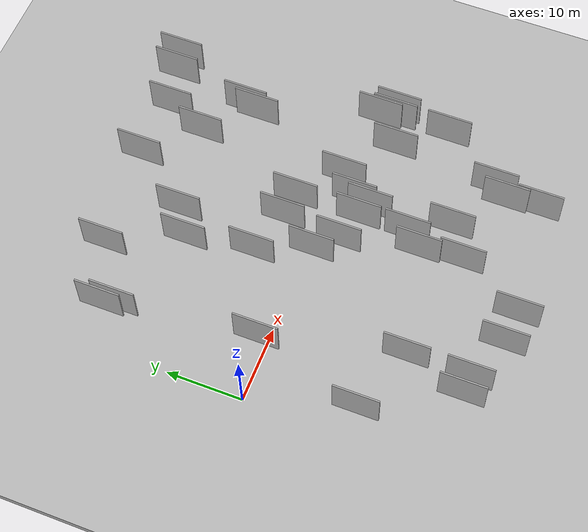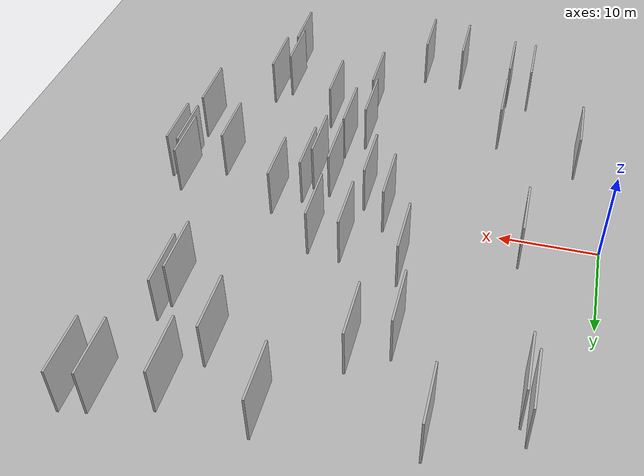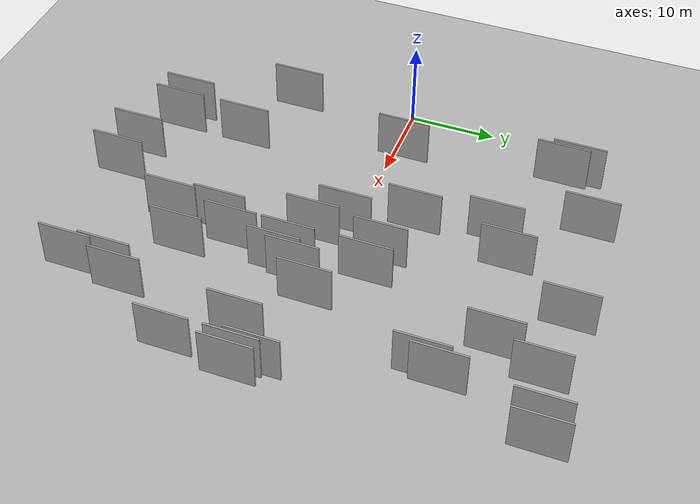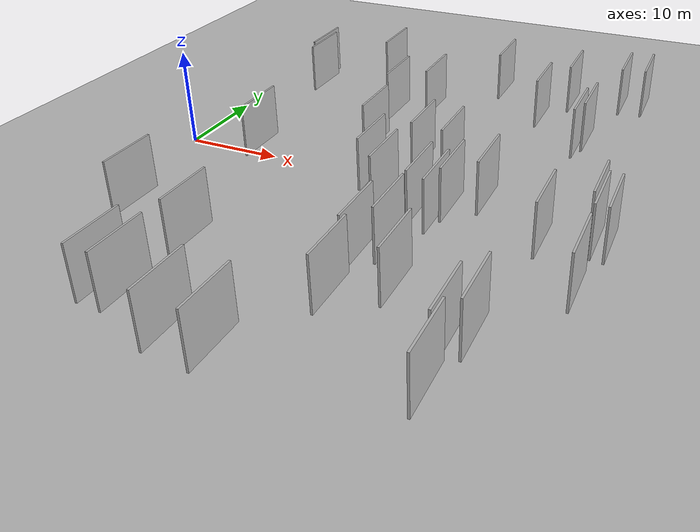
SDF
<?xml version="1.0" encoding="utf-8"?>

<sdf version="1.6">

   <world name="default">

      <gui fullscreen="0">

         <camera name="user_camera">

            <pose>-15 0 4.57585 0 0 0</pose>

            <view_controller>orbit</view_controller>

         </camera>

      </gui>

      <scene>

         <sky>

           <clouds>

             <speed>12</speed>

           </clouds>

         </sky>

         <ambient>0.4 0.4 0.4 1</ambient>

         <background>0.7 0.7 0.7 1</background>

         <shadows>1</shadows>

      </scene>

      <gravity>0 0 -9.8066</gravity>

      <magnetic_field>6e-06 2.3e-05 -4.2e-05</magnetic_field>

      <physics default="0" name="default_physics" type="ode">

         <ode>

            <solver>

               <type>quick</type>

               <iters>10</iters>

               <sor>1.0</sor>

               <use_dynamic_moi_rescaling>0</use_dynamic_moi_rescaling>

            </solver>

            <constraints>

               <cfm>0</cfm>

               <erp>0.2</erp>

               <contact_max_correcting_vel>100</contact_max_correcting_vel>

               <contact_surface_layer>0.001</contact_surface_layer>

            </constraints>

         </ode>

         <max_step_size>0.004</max_step_size>

         <real_time_factor>1</real_time_factor>

         <real_time_update_rate>250</real_time_update_rate>

      </physics>

      <light name="sun" type="directional">

         <cast_shadows>1</cast_shadows>

         <pose>0 0 10 0 0 0</pose>

         <diffuse>0.8 0.8 0.8 1</diffuse>

         <specular>0.2 0.2 0.2 1</specular>

         <attenuation>

            <range>1000</range>

            <constant>0.9</constant>

            <linear>0.01</linear>

            <quadratic>0.001</quadratic>

         </attenuation>

         <direction>-0.5 0.1 -0.9</direction>

      </light>

      <include>

         <name>ground_plane_1</name>

         <uri>model://HANNAS_ground_plane</uri>

         <pose>0 0 0  0 0 0</pose>

      </include>

      <include>

         <name>ground_plane_2</name>

         <uri>model://HANNAS_ground_plane</uri>

         <pose>100 0 0  0 0 0</pose>

      </include>

      <model name="HANNAS_wall_1">

         <static>1</static>

         <pose frame="">5.6228 19.3882 0.0 0.000000 0.000000 1.570796</pose>

         <link name="link">

            <pose frame="">0 0 3.00 0 0 0</pose>

            <collision name="collision">

               <geometry>

                  <box>

                     <size>6.00 0.2 6.00</size>

                  </box>

               </geometry>

               <max_contacts>10</max_contacts>

               <surface>

                  <contact>

                     <ode/>

                  </contact>

                  <bounce/>

                  <friction>

                     <torsional>

                        <ode/>

                     </torsional>

                     <ode/>

                  </friction>

               </surface>

            </collision>

            <visual name="visual">

               <cast_shadows>0</cast_shadows>

               <geometry>

                  <box>

                     <size>6.00 0.2 6.00</size>

                  </box>

               </geometry>

               <material>

                  <script>

                     <uri>model://HANNAS_wall/materials/scripts</uri>

                     <uri>model://HANNAS_wall/materials/textures</uri>

                     <name>vrc/HANNAS_wall</name>

                  </script>

               </material>

            </visual>

            <self_collide>0</self_collide>

            <enable_wind>0</enable_wind>

            <kinematic>0</kinematic>

         </link>

      </model>

      <model name="HANNAS_wall_2">

         <static>1</static>

         <pose frame="">44.4000 -11.1385 0.0 0.000000 0.000000 1.570796</pose>

         <link name="link">

            <pose frame="">0 0 3.00 0 0 0</pose>

            <collision name="collision">

               <geometry>

                  <box>

                     <size>6.00 0.2 6.00</size>

                  </box>

               </geometry>

               <max_contacts>10</max_contacts>

               <surface>

                  <contact>

                     <ode/>

                  </contact>

                  <bounce/>

                  <friction>

                     <torsional>

                        <ode/>

                     </torsional>

                     <ode/>

                  </friction>

               </surface>

            </collision>

            <visual name="visual">

               <cast_shadows>0</cast_shadows>

               <geometry>

                  <box>

                     <size>6.00 0.2 6.00</size>

                  </box>

               </geometry>

               <material>

                  <script>

                     <uri>model://HANNAS_wall/materials/scripts</uri>

                     <uri>model://HANNAS_wall/materials/textures</uri>

                     <name>vrc/HANNAS_wall</name>

                  </script>

               </material>

            </visual>

            <self_collide>0</self_collide>

            <enable_wind>0</enable_wind>

            <kinematic>0</kinematic>

         </link>

      </model>

      <model name="HANNAS_wall_3">

         <static>1</static>

         <pose frame="">13.0281 24.3655 0.0 0.000000 0.000000 1.570796</pose>

         <link name="link">

            <pose frame="">0 0 3.00 0 0 0</pose>

            <collision name="collision">

               <geometry>

                  <box>

                     <size>6.00 0.2 6.00</size>

                  </box>

               </geometry>

               <max_contacts>10</max_contacts>

               <surface>

                  <contact>

                     <ode/>

                  </contact>

                  <bounce/>

                  <friction>

                     <torsional>

                        <ode/>

                     </torsional>

                     <ode/>

                  </friction>

               </surface>

            </collision>

            <visual name="visual">

               <cast_shadows>0</cast_shadows>

               <geometry>

                  <box>

                     <size>6.00 0.2 6.00</size>

                  </box>

               </geometry>

               <material>

                  <script>

                     <uri>model://HANNAS_wall/materials/scripts</uri>

                     <uri>model://HANNAS_wall/materials/textures</uri>

                     <name>vrc/HANNAS_wall</name>

                  </script>

               </material>

            </visual>

            <self_collide>0</self_collide>

            <enable_wind>0</enable_wind>

            <kinematic>0</kinematic>

         </link>

      </model>

      <model name="HANNAS_wall_4">

         <static>1</static>

         <pose frame="">39.2123 15.6683 0.0 0.000000 0.000000 1.570796</pose>

         <link name="link">

            <pose frame="">0 0 3.00 0 0 0</pose>

            <collision name="collision">

               <geometry>

                  <box>

                     <size>6.00 0.2 6.00</size>

                  </box>

               </geometry>

               <max_contacts>10</max_contacts>

               <surface>

                  <contact>

                     <ode/>

                  </contact>

                  <bounce/>

                  <friction>

                     <torsional>

                        <ode/>

                     </torsional>

                     <ode/>

                  </friction>

               </surface>

            </collision>

            <visual name="visual">

               <cast_shadows>0</cast_shadows>

               <geometry>

                  <box>

                     <size>6.00 0.2 6.00</size>

                  </box>

               </geometry>

               <material>

                  <script>

                     <uri>model://HANNAS_wall/materials/scripts</uri>

                     <uri>model://HANNAS_wall/materials/textures</uri>

                     <name>vrc/HANNAS_wall</name>

                  </script>

               </material>

            </visual>

            <self_collide>0</self_collide>

            <enable_wind>0</enable_wind>

            <kinematic>0</kinematic>

         </link>

      </model>

      <model name="HANNAS_wall_5">

         <static>1</static>

         <pose frame="">24.8268 4.6167 0.0 0.000000 0.000000 1.570796</pose>

         <link name="link">

            <pose frame="">0 0 3.00 0 0 0</pose>

            <collision name="collision">

               <geometry>

                  <box>

                     <size>6.00 0.2 6.00</size>

                  </box>

               </geometry>

               <max_contacts>10</max_contacts>

               <surface>

                  <contact>

                     <ode/>

                  </contact>

                  <bounce/>

                  <friction>

                     <torsional>

                        <ode/>

                     </torsional>

                     <ode/>

                  </friction>

               </surface>

            </collision>

            <visual name="visual">

               <cast_shadows>0</cast_shadows>

               <geometry>

                  <box>

                     <size>6.00 0.2 6.00</size>

                  </box>

               </geometry>

               <material>

                  <script>

                     <uri>model://HANNAS_wall/materials/scripts</uri>

                     <uri>model://HANNAS_wall/materials/textures</uri>

                     <name>vrc/HANNAS_wall</name>

                  </script>

               </material>

            </visual>

            <self_collide>0</self_collide>

            <enable_wind>0</enable_wind>

            <kinematic>0</kinematic>

         </link>

      </model>

      <model name="HANNAS_wall_6">

         <static>1</static>

         <pose frame="">28.2179 -4.4504 0.0 0.000000 0.000000 1.570796</pose>

         <link name="link">

            <pose frame="">0 0 3.00 0 0 0</pose>

            <collision name="collision">

               <geometry>

                  <box>

                     <size>6.00 0.2 6.00</size>

                  </box>

               </geometry>

               <max_contacts>10</max_contacts>

               <surface>

                  <contact>

                     <ode/>

                  </contact>

                  <bounce/>

                  <friction>

                     <torsional>

                        <ode/>

                     </torsional>

                     <ode/>

                  </friction>

               </surface>

            </collision>

            <visual name="visual">

               <cast_shadows>0</cast_shadows>

               <geometry>

                  <box>

                     <size>6.00 0.2 6.00</size>

                  </box>

               </geometry>

               <material>

                  <script>

                     <uri>model://HANNAS_wall/materials/scripts</uri>

                     <uri>model://HANNAS_wall/materials/textures</uri>

                     <name>vrc/HANNAS_wall</name>

                  </script>

               </material>

            </visual>

            <self_collide>0</self_collide>

            <enable_wind>0</enable_wind>

            <kinematic>0</kinematic>

         </link>

      </model>

      <model name="HANNAS_wall_7">

         <static>1</static>

         <pose frame="">38.8228 -19.3065 0.0 0.000000 0.000000 1.570796</pose>

         <link name="link">

            <pose frame="">0 0 3.00 0 0 0</pose>

            <collision name="collision">

               <geometry>

                  <box>

                     <size>6.00 0.2 6.00</size>

                  </box>

               </geometry>

               <max_contacts>10</max_contacts>

               <surface>

                  <contact>

                     <ode/>

                  </contact>

                  <bounce/>

                  <friction>

                     <torsional>

                        <ode/>

                     </torsional>

                     <ode/>

                  </friction>

               </surface>

            </collision>

            <visual name="visual">

               <cast_shadows>0</cast_shadows>

               <geometry>

                  <box>

                     <size>6.00 0.2 6.00</size>

                  </box>

               </geometry>

               <material>

                  <script>

                     <uri>model://HANNAS_wall/materials/scripts</uri>

                     <uri>model://HANNAS_wall/materials/textures</uri>

                     <name>vrc/HANNAS_wall</name>

                  </script>

               </material>

            </visual>

            <self_collide>0</self_collide>

            <enable_wind>0</enable_wind>

            <kinematic>0</kinematic>

         </link>

      </model>

      <model name="HANNAS_wall_8">

         <static>1</static>

         <pose frame="">7.7020 1.3010 0.0 0.000000 0.000000 1.570796</pose>

         <link name="link">

            <pose frame="">0 0 3.00 0 0 0</pose>

            <collision name="collision">

               <geometry>

                  <box>

                     <size>6.00 0.2 6.00</size>

                  </box>

               </geometry>

               <max_contacts>10</max_contacts>

               <surface>

                  <contact>

                     <ode/>

                  </contact>

                  <bounce/>

                  <friction>

                     <torsional>

                        <ode/>

                     </torsional>

                     <ode/>

                  </friction>

               </surface>

            </collision>

            <visual name="visual">

               <cast_shadows>0</cast_shadows>

               <geometry>

                  <box>

                     <size>6.00 0.2 6.00</size>

                  </box>

               </geometry>

               <material>

                  <script>

                     <uri>model://HANNAS_wall/materials/scripts</uri>

                     <uri>model://HANNAS_wall/materials/textures</uri>

                     <name>vrc/HANNAS_wall</name>

                  </script>

               </material>

            </visual>

            <self_collide>0</self_collide>

            <enable_wind>0</enable_wind>

            <kinematic>0</kinematic>

         </link>

      </model>

      <model name="HANNAS_wall_9">

         <static>1</static>

         <pose frame="">26.7712 -18.8318 0.0 0.000000 0.000000 1.570796</pose>

         <link name="link">

            <pose frame="">0 0 3.00 0 0 0</pose>

            <collision name="collision">

               <geometry>

                  <box>

                     <size>6.00 0.2 6.00</size>

                  </box>

               </geometry>

               <max_contacts>10</max_contacts>

               <surface>

                  <contact>

                     <ode/>

                  </contact>

                  <bounce/>

                  <friction>

                     <torsional>

                        <ode/>

                     </torsional>

                     <ode/>

                  </friction>

               </surface>

            </collision>

            <visual name="visual">

               <cast_shadows>0</cast_shadows>

               <geometry>

                  <box>

                     <size>6.00 0.2 6.00</size>

                  </box>

               </geometry>

               <material>

                  <script>

                     <uri>model://HANNAS_wall/materials/scripts</uri>

                     <uri>model://HANNAS_wall/materials/textures</uri>

                     <name>vrc/HANNAS_wall</name>

                  </script>

               </material>

            </visual>

            <self_collide>0</self_collide>

            <enable_wind>0</enable_wind>

            <kinematic>0</kinematic>

         </link>

      </model>

      <model name="HANNAS_wall_10">

         <static>1</static>

         <pose frame="">9.4231 -24.6257 0.0 0.000000 0.000000 1.570796</pose>

         <link name="link">

            <pose frame="">0 0 3.00 0 0 0</pose>

            <collision name="collision">

               <geometry>

                  <box>

                     <size>6.00 0.2 6.00</size>

                  </box>

               </geometry>

               <max_contacts>10</max_contacts>

               <surface>

                  <contact>

                     <ode/>

                  </contact>

                  <bounce/>

                  <friction>

                     <torsional>

                        <ode/>

                     </torsional>

                     <ode/>

                  </friction>

               </surface>

            </collision>

            <visual name="visual">

               <cast_shadows>0</cast_shadows>

               <geometry>

                  <box>

                     <size>6.00 0.2 6.00</size>

                  </box>

               </geometry>

               <material>

                  <script>

                     <uri>model://HANNAS_wall/materials/scripts</uri>

                     <uri>model://HANNAS_wall/materials/textures</uri>

                     <name>vrc/HANNAS_wall</name>

                  </script>

               </material>

            </visual>

            <self_collide>0</self_collide>

            <enable_wind>0</enable_wind>

            <kinematic>0</kinematic>

         </link>

      </model>

      <model name="HANNAS_wall_11">

         <static>1</static>

         <pose frame="">21.5983 -0.5681 0.0 0.000000 0.000000 1.570796</pose>

         <link name="link">

            <pose frame="">0 0 3.00 0 0 0</pose>

            <collision name="collision">

               <geometry>

                  <box>

                     <size>6.00 0.2 6.00</size>

                  </box>

               </geometry>

               <max_contacts>10</max_contacts>

               <surface>

                  <contact>

                     <ode/>

                  </contact>

                  <bounce/>

                  <friction>

                     <torsional>

                        <ode/>

                     </torsional>

                     <ode/>

                  </friction>

               </surface>

            </collision>

            <visual name="visual">

               <cast_shadows>0</cast_shadows>

               <geometry>

                  <box>

                     <size>6.00 0.2 6.00</size>

                  </box>

               </geometry>

               <material>

                  <script>

                     <uri>model://HANNAS_wall/materials/scripts</uri>

                     <uri>model://HANNAS_wall/materials/textures</uri>

                     <name>vrc/HANNAS_wall</name>

                  </script>

               </material>

            </visual>

            <self_collide>0</self_collide>

            <enable_wind>0</enable_wind>

            <kinematic>0</kinematic>

         </link>

      </model>

      <model name="HANNAS_wall_12">

         <static>1</static>

         <pose frame="">3.2260 -13.3596 0.0 0.000000 0.000000 1.570796</pose>

         <link name="link">

            <pose frame="">0 0 3.00 0 0 0</pose>

            <collision name="collision">

               <geometry>

                  <box>

                     <size>6.00 0.2 6.00</size>

                  </box>

               </geometry>

               <max_contacts>10</max_contacts>

               <surface>

                  <contact>

                     <ode/>

                  </contact>

                  <bounce/>

                  <friction>

                     <torsional>

                        <ode/>

                     </torsional>

                     <ode/>

                  </friction>

               </surface>

            </collision>

            <visual name="visual">

               <cast_shadows>0</cast_shadows>

               <geometry>

                  <box>

                     <size>6.00 0.2 6.00</size>

                  </box>

               </geometry>

               <material>

                  <script>

                     <uri>model://HANNAS_wall/materials/scripts</uri>

                     <uri>model://HANNAS_wall/materials/textures</uri>

                     <name>vrc/HANNAS_wall</name>

                  </script>

               </material>

            </visual>

            <self_collide>0</self_collide>

            <enable_wind>0</enable_wind>

            <kinematic>0</kinematic>

         </link>

      </model>

      <model name="HANNAS_wall_13">

         <static>1</static>

         <pose frame="">17.7309 -27.2465 0.0 0.000000 0.000000 1.570796</pose>

         <link name="link">

            <pose frame="">0 0 3.00 0 0 0</pose>

            <collision name="collision">

               <geometry>

                  <box>

                     <size>6.00 0.2 6.00</size>

                  </box>

               </geometry>

               <max_contacts>10</max_contacts>

               <surface>

                  <contact>

                     <ode/>

                  </contact>

                  <bounce/>

                  <friction>

                     <torsional>

                        <ode/>

                     </torsional>

                     <ode/>

                  </friction>

               </surface>

            </collision>

            <visual name="visual">

               <cast_shadows>0</cast_shadows>

               <geometry>

                  <box>

                     <size>6.00 0.2 6.00</size>

                  </box>

               </geometry>

               <material>

                  <script>

                     <uri>model://HANNAS_wall/materials/scripts</uri>

                     <uri>model://HANNAS_wall/materials/textures</uri>

                     <name>vrc/HANNAS_wall</name>

                  </script>

               </material>

            </visual>

            <self_collide>0</self_collide>

            <enable_wind>0</enable_wind>

            <kinematic>0</kinematic>

         </link>

      </model>

      <model name="HANNAS_wall_14">

         <static>1</static>

         <pose frame="">33.1355 19.5572 0.0 0.000000 0.000000 1.570796</pose>

         <link name="link">

            <pose frame="">0 0 3.00 0 0 0</pose>

            <collision name="collision">

               <geometry>

                  <box>

                     <size>6.00 0.2 6.00</size>

                  </box>

               </geometry>

               <max_contacts>10</max_contacts>

               <surface>

                  <contact>

                     <ode/>

                  </contact>

                  <bounce/>

                  <friction>

                     <torsional>

                        <ode/>

                     </torsional>

                     <ode/>

                  </friction>

               </surface>

            </collision>

            <visual name="visual">

               <cast_shadows>0</cast_shadows>

               <geometry>

                  <box>

                     <size>6.00 0.2 6.00</size>

                  </box>

               </geometry>

               <material>

                  <script>

                     <uri>model://HANNAS_wall/materials/scripts</uri>

                     <uri>model://HANNAS_wall/materials/textures</uri>

                     <name>vrc/HANNAS_wall</name>

                  </script>

               </material>

            </visual>

            <self_collide>0</self_collide>

            <enable_wind>0</enable_wind>

            <kinematic>0</kinematic>

         </link>

      </model>

      <model name="HANNAS_wall_15">

         <static>1</static>

         <pose frame="">21.0847 17.4154 0.0 0.000000 0.000000 1.570796</pose>

         <link name="link">

            <pose frame="">0 0 3.00 0 0 0</pose>

            <collision name="collision">

               <geometry>

                  <box>

                     <size>6.00 0.2 6.00</size>

                  </box>

               </geometry>

               <max_contacts>10</max_contacts>

               <surface>

                  <contact>

                     <ode/>

                  </contact>

                  <bounce/>

                  <friction>

                     <torsional>

                        <ode/>

                     </torsional>

                     <ode/>

                  </friction>

               </surface>

            </collision>

            <visual name="visual">

               <cast_shadows>0</cast_shadows>

               <geometry>

                  <box>

                     <size>6.00 0.2 6.00</size>

                  </box>

               </geometry>

               <material>

                  <script>

                     <uri>model://HANNAS_wall/materials/scripts</uri>

                     <uri>model://HANNAS_wall/materials/textures</uri>

                     <name>vrc/HANNAS_wall</name>

                  </script>

               </material>

            </visual>

            <self_collide>0</self_collide>

            <enable_wind>0</enable_wind>

            <kinematic>0</kinematic>

         </link>

      </model>

      <model name="HANNAS_wall_16">

         <static>1</static>

         <pose frame="">45.5664 -3.7414 0.0 0.000000 0.000000 1.570796</pose>

         <link name="link">

            <pose frame="">0 0 3.00 0 0 0</pose>

            <collision name="collision">

               <geometry>

                  <box>

                     <size>6.00 0.2 6.00</size>

                  </box>

               </geometry>

               <max_contacts>10</max_contacts>

               <surface>

                  <contact>

                     <ode/>

                  </contact>

                  <bounce/>

                  <friction>

                     <torsional>

                        <ode/>

                     </torsional>

                     <ode/>

                  </friction>

               </surface>

            </collision>

            <visual name="visual">

               <cast_shadows>0</cast_shadows>

               <geometry>

                  <box>

                     <size>6.00 0.2 6.00</size>

                  </box>

               </geometry>

               <material>

                  <script>

                     <uri>model://HANNAS_wall/materials/scripts</uri>

                     <uri>model://HANNAS_wall/materials/textures</uri>

                     <name>vrc/HANNAS_wall</name>

                  </script>

               </material>

            </visual>

            <self_collide>0</self_collide>

            <enable_wind>0</enable_wind>

            <kinematic>0</kinematic>

         </link>

      </model>

      <model name="HANNAS_wall_17">

         <static>1</static>

         <pose frame="">44.3735 -3.6264 0.0 0.000000 0.000000 1.570796</pose>

         <link name="link">

            <pose frame="">0 0 3.00 0 0 0</pose>

            <collision name="collision">

               <geometry>

                  <box>

                     <size>6.00 0.2 6.00</size>

                  </box>

               </geometry>

               <max_contacts>10</max_contacts>

               <surface>

                  <contact>

                     <ode/>

                  </contact>

                  <bounce/>

                  <friction>

                     <torsional>

                        <ode/>

                     </torsional>

                     <ode/>

                  </friction>

               </surface>

            </collision>

            <visual name="visual">

               <cast_shadows>0</cast_shadows>

               <geometry>

                  <box>

                     <size>6.00 0.2 6.00</size>

                  </box>

               </geometry>

               <material>

                  <script>

                     <uri>model://HANNAS_wall/materials/scripts</uri>

                     <uri>model://HANNAS_wall/materials/textures</uri>

                     <name>vrc/HANNAS_wall</name>

                  </script>

               </material>

            </visual>

            <self_collide>0</self_collide>

            <enable_wind>0</enable_wind>

            <kinematic>0</kinematic>

         </link>

      </model>

      <model name="HANNAS_wall_18">

         <static>1</static>

         <pose frame="">11.9200 -16.6641 0.0 0.000000 0.000000 1.570796</pose>

         <link name="link">

            <pose frame="">0 0 3.00 0 0 0</pose>

            <collision name="collision">

               <geometry>

                  <box>

                     <size>6.00 0.2 6.00</size>

                  </box>

               </geometry>

               <max_contacts>10</max_contacts>

               <surface>

                  <contact>

                     <ode/>

                  </contact>

                  <bounce/>

                  <friction>

                     <torsional>

                        <ode/>

                     </torsional>

                     <ode/>

                  </friction>

               </surface>

            </collision>

            <visual name="visual">

               <cast_shadows>0</cast_shadows>

               <geometry>

                  <box>

                     <size>6.00 0.2 6.00</size>

                  </box>

               </geometry>

               <material>

                  <script>

                     <uri>model://HANNAS_wall/materials/scripts</uri>

                     <uri>model://HANNAS_wall/materials/textures</uri>

                     <name>vrc/HANNAS_wall</name>

                  </script>

               </material>

            </visual>

            <self_collide>0</self_collide>

            <enable_wind>0</enable_wind>

            <kinematic>0</kinematic>

         </link>

      </model>

      <model name="HANNAS_wall_19">

         <static>1</static>

         <pose frame="">35.5066 24.8815 0.0 0.000000 0.000000 1.570796</pose>

         <link name="link">

            <pose frame="">0 0 3.00 0 0 0</pose>

            <collision name="collision">

               <geometry>

                  <box>

                     <size>6.00 0.2 6.00</size>

                  </box>

               </geometry>

               <max_contacts>10</max_contacts>

               <surface>

                  <contact>

                     <ode/>

                  </contact>

                  <bounce/>

                  <friction>

                     <torsional>

                        <ode/>

                     </torsional>

                     <ode/>

                  </friction>

               </surface>

            </collision>

            <visual name="visual">

               <cast_shadows>0</cast_shadows>

               <geometry>

                  <box>

                     <size>6.00 0.2 6.00</size>

                  </box>

               </geometry>

               <material>

                  <script>

                     <uri>model://HANNAS_wall/materials/scripts</uri>

                     <uri>model://HANNAS_wall/materials/textures</uri>

                     <name>vrc/HANNAS_wall</name>

                  </script>

               </material>

            </visual>

            <self_collide>0</self_collide>

            <enable_wind>0</enable_wind>

            <kinematic>0</kinematic>

         </link>

      </model>

      <model name="HANNAS_wall_20">

         <static>1</static>

         <pose frame="">40.0006 -5.2245 0.0 0.000000 0.000000 1.570796</pose>

         <link name="link">

            <pose frame="">0 0 3.00 0 0 0</pose>

            <collision name="collision">

               <geometry>

                  <box>

                     <size>6.00 0.2 6.00</size>

                  </box>

               </geometry>

               <max_contacts>10</max_contacts>

               <surface>

                  <contact>

                     <ode/>

                  </contact>

                  <bounce/>

                  <friction>

                     <torsional>

                        <ode/>

                     </torsional>

                     <ode/>

                  </friction>

               </surface>

            </collision>

            <visual name="visual">

               <cast_shadows>0</cast_shadows>

               <geometry>

                  <box>

                     <size>6.00 0.2 6.00</size>

                  </box>

               </geometry>

               <material>

                  <script>

                     <uri>model://HANNAS_wall/materials/scripts</uri>

                     <uri>model://HANNAS_wall/materials/textures</uri>

                     <name>vrc/HANNAS_wall</name>

                  </script>

               </material>

            </visual>

            <self_collide>0</self_collide>

            <enable_wind>0</enable_wind>

            <kinematic>0</kinematic>

         </link>

      </model>

      <model name="HANNAS_wall_21">

         <static>1</static>

         <pose frame="">43.9097 -1.7223 0.0 0.000000 0.000000 1.570796</pose>

         <link name="link">

            <pose frame="">0 0 3.00 0 0 0</pose>

            <collision name="collision">

               <geometry>

                  <box>

                     <size>6.00 0.2 6.00</size>

                  </box>

               </geometry>

               <max_contacts>10</max_contacts>

               <surface>

                  <contact>

                     <ode/>

                  </contact>

                  <bounce/>

                  <friction>

                     <torsional>

                        <ode/>

                     </torsional>

                     <ode/>

                  </friction>

               </surface>

            </collision>

            <visual name="visual">

               <cast_shadows>0</cast_shadows>

               <geometry>

                  <box>

                     <size>6.00 0.2 6.00</size>

                  </box>

               </geometry>

               <material>

                  <script>

                     <uri>model://HANNAS_wall/materials/scripts</uri>

                     <uri>model://HANNAS_wall/materials/textures</uri>

                     <name>vrc/HANNAS_wall</name>

                  </script>

               </material>

            </visual>

            <self_collide>0</self_collide>

            <enable_wind>0</enable_wind>

            <kinematic>0</kinematic>

         </link>

      </model>

      <model name="HANNAS_wall_22">

         <static>1</static>

         <pose frame="">33.4130 -0.5231 0.0 0.000000 0.000000 1.570796</pose>

         <link name="link">

            <pose frame="">0 0 3.00 0 0 0</pose>

            <collision name="collision">

               <geometry>

                  <box>

                     <size>6.00 0.2 6.00</size>

                  </box>

               </geometry>

               <max_contacts>10</max_contacts>

               <surface>

                  <contact>

                     <ode/>

                  </contact>

                  <bounce/>

                  <friction>

                     <torsional>

                        <ode/>

                     </torsional>

                     <ode/>

                  </friction>

               </surface>

            </collision>

            <visual name="visual">

               <cast_shadows>0</cast_shadows>

               <geometry>

                  <box>

                     <size>6.00 0.2 6.00</size>

                  </box>

               </geometry>

               <material>

                  <script>

                     <uri>model://HANNAS_wall/materials/scripts</uri>

                     <uri>model://HANNAS_wall/materials/textures</uri>

                     <name>vrc/HANNAS_wall</name>

                  </script>

               </material>

            </visual>

            <self_collide>0</self_collide>

            <enable_wind>0</enable_wind>

            <kinematic>0</kinematic>

         </link>

      </model>

      <model name="HANNAS_wall_23">

         <static>1</static>

         <pose frame="">18.7232 6.3720 0.0 0.000000 0.000000 1.570796</pose>

         <link name="link">

            <pose frame="">0 0 3.00 0 0 0</pose>

            <collision name="collision">

               <geometry>

                  <box>

                     <size>6.00 0.2 6.00</size>

                  </box>

               </geometry>

               <max_contacts>10</max_contacts>

               <surface>

                  <contact>

                     <ode/>

                  </contact>

                  <bounce/>

                  <friction>

                     <torsional>

                        <ode/>

                     </torsional>

                     <ode/>

                  </friction>

               </surface>

            </collision>

            <visual name="visual">

               <cast_shadows>0</cast_shadows>

               <geometry>

                  <box>

                     <size>6.00 0.2 6.00</size>

                  </box>

               </geometry>

               <material>

                  <script>

                     <uri>model://HANNAS_wall/materials/scripts</uri>

                     <uri>model://HANNAS_wall/materials/textures</uri>

                     <name>vrc/HANNAS_wall</name>

                  </script>

               </material>

            </visual>

            <self_collide>0</self_collide>

            <enable_wind>0</enable_wind>

            <kinematic>0</kinematic>

         </link>

      </model>

      <model name="HANNAS_wall_24">

         <static>1</static>

         <pose frame="">31.0983 -16.0170 0.0 0.000000 0.000000 1.570796</pose>

         <link name="link">

            <pose frame="">0 0 3.00 0 0 0</pose>

            <collision name="collision">

               <geometry>

                  <box>

                     <size>6.00 0.2 6.00</size>

                  </box>

               </geometry>

               <max_contacts>10</max_contacts>

               <surface>

                  <contact>

                     <ode/>

                  </contact>

                  <bounce/>

                  <friction>

                     <torsional>

                        <ode/>

                     </torsional>

                     <ode/>

                  </friction>

               </surface>

            </collision>

            <visual name="visual">

               <cast_shadows>0</cast_shadows>

               <geometry>

                  <box>

                     <size>6.00 0.2 6.00</size>

                  </box>

               </geometry>

               <material>

                  <script>

                     <uri>model://HANNAS_wall/materials/scripts</uri>

                     <uri>model://HANNAS_wall/materials/textures</uri>

                     <name>vrc/HANNAS_wall</name>

                  </script>

               </material>

            </visual>

            <self_collide>0</self_collide>

            <enable_wind>0</enable_wind>

            <kinematic>0</kinematic>

         </link>

      </model>

      <model name="HANNAS_wall_25">

         <static>1</static>

         <pose frame="">27.0245 25.5531 0.0 0.000000 0.000000 1.570796</pose>

         <link name="link">

            <pose frame="">0 0 3.00 0 0 0</pose>

            <collision name="collision">

               <geometry>

                  <box>

                     <size>6.00 0.2 6.00</size>

                  </box>

               </geometry>

               <max_contacts>10</max_contacts>

               <surface>

                  <contact>

                     <ode/>

                  </contact>

                  <bounce/>

                  <friction>

                     <torsional>

                        <ode/>

                     </torsional>

                     <ode/>

                  </friction>

               </surface>

            </collision>

            <visual name="visual">

               <cast_shadows>0</cast_shadows>

               <geometry>

                  <box>

                     <size>6.00 0.2 6.00</size>

                  </box>

               </geometry>

               <material>

                  <script>

                     <uri>model://HANNAS_wall/materials/scripts</uri>

                     <uri>model://HANNAS_wall/materials/textures</uri>

                     <name>vrc/HANNAS_wall</name>

                  </script>

               </material>

            </visual>

            <self_collide>0</self_collide>

            <enable_wind>0</enable_wind>

            <kinematic>0</kinematic>

         </link>

      </model>

      <model name="HANNAS_wall_26">

         <static>1</static>

         <pose frame="">41.0014 26.3945 0.0 0.000000 0.000000 1.570796</pose>

         <link name="link">

            <pose frame="">0 0 3.00 0 0 0</pose>

            <collision name="collision">

               <geometry>

                  <box>

                     <size>6.00 0.2 6.00</size>

                  </box>

               </geometry>

               <max_contacts>10</max_contacts>

               <surface>

                  <contact>

                     <ode/>

                  </contact>

                  <bounce/>

                  <friction>

                     <torsional>

                        <ode/>

                     </torsional>

                     <ode/>

                  </friction>

               </surface>

            </collision>

            <visual name="visual">

               <cast_shadows>0</cast_shadows>

               <geometry>

                  <box>

                     <size>6.00 0.2 6.00</size>

                  </box>

               </geometry>

               <material>

                  <script>

                     <uri>model://HANNAS_wall/materials/scripts</uri>

                     <uri>model://HANNAS_wall/materials/textures</uri>

                     <name>vrc/HANNAS_wall</name>

                  </script>

               </material>

            </visual>

            <self_collide>0</self_collide>

            <enable_wind>0</enable_wind>

            <kinematic>0</kinematic>

         </link>

      </model>

      <model name="HANNAS_wall_27">

         <static>1</static>

         <pose frame="">30.1677 -5.2687 0.0 0.000000 0.000000 1.570796</pose>

         <link name="link">

            <pose frame="">0 0 3.00 0 0 0</pose>

            <collision name="collision">

               <geometry>

                  <box>

                     <size>6.00 0.2 6.00</size>

                  </box>

               </geometry>

               <max_contacts>10</max_contacts>

               <surface>

                  <contact>

                     <ode/>

                  </contact>

                  <bounce/>

                  <friction>

                     <torsional>

                        <ode/>

                     </torsional>

                     <ode/>

                  </friction>

               </surface>

            </collision>

            <visual name="visual">

               <cast_shadows>0</cast_shadows>

               <geometry>

                  <box>

                     <size>6.00 0.2 6.00</size>

                  </box>

               </geometry>

               <material>

                  <script>

                     <uri>model://HANNAS_wall/materials/scripts</uri>

                     <uri>model://HANNAS_wall/materials/textures</uri>

                     <name>vrc/HANNAS_wall</name>

                  </script>

               </material>

            </visual>

            <self_collide>0</self_collide>

            <enable_wind>0</enable_wind>

            <kinematic>0</kinematic>

         </link>

      </model>

      <model name="HANNAS_wall_28">

         <static>1</static>

         <pose frame="">22.0834 -27.6190 0.0 0.000000 0.000000 1.570796</pose>

         <link name="link">

            <pose frame="">0 0 3.00 0 0 0</pose>

            <collision name="collision">

               <geometry>

                  <box>

                     <size>6.00 0.2 6.00</size>

                  </box>

               </geometry>

               <max_contacts>10</max_contacts>

               <surface>

                  <contact>

                     <ode/>

                  </contact>

                  <bounce/>

                  <friction>

                     <torsional>

                        <ode/>

                     </torsional>

                     <ode/>

                  </friction>

               </surface>

            </collision>

            <visual name="visual">

               <cast_shadows>0</cast_shadows>

               <geometry>

                  <box>

                     <size>6.00 0.2 6.00</size>

                  </box>

               </geometry>

               <material>

                  <script>

                     <uri>model://HANNAS_wall/materials/scripts</uri>

                     <uri>model://HANNAS_wall/materials/textures</uri>

                     <name>vrc/HANNAS_wall</name>

                  </script>

               </material>

            </visual>

            <self_collide>0</self_collide>

            <enable_wind>0</enable_wind>

            <kinematic>0</kinematic>

         </link>

      </model>

      <model name="HANNAS_wall_29">

         <static>1</static>

         <pose frame="">17.3978 15.0946 0.0 0.000000 0.000000 1.570796</pose>

         <link name="link">

            <pose frame="">0 0 3.00 0 0 0</pose>

            <collision name="collision">

               <geometry>

                  <box>

                     <size>6.00 0.2 6.00</size>

                  </box>

               </geometry>

               <max_contacts>10</max_contacts>

               <surface>

                  <contact>

                     <ode/>

                  </contact>

                  <bounce/>

                  <friction>

                     <torsional>

                        <ode/>

                     </torsional>

                     <ode/>

                  </friction>

               </surface>

            </collision>

            <visual name="visual">

               <cast_shadows>0</cast_shadows>

               <geometry>

                  <box>

                     <size>6.00 0.2 6.00</size>

                  </box>

               </geometry>

               <material>

                  <script>

                     <uri>model://HANNAS_wall/materials/scripts</uri>

                     <uri>model://HANNAS_wall/materials/textures</uri>

                     <name>vrc/HANNAS_wall</name>

                  </script>

               </material>

            </visual>

            <self_collide>0</self_collide>

            <enable_wind>0</enable_wind>

            <kinematic>0</kinematic>

         </link>

      </model>

      <model name="HANNAS_wall_30">

         <static>1</static>

         <pose frame="">30.7826 -2.9107 0.0 0.000000 0.000000 1.570796</pose>

         <link name="link">

            <pose frame="">0 0 3.00 0 0 0</pose>

            <collision name="collision">

               <geometry>

                  <box>

                     <size>6.00 0.2 6.00</size>

                  </box>

               </geometry>

               <max_contacts>10</max_contacts>

               <surface>

                  <contact>

                     <ode/>

                  </contact>

                  <bounce/>

                  <friction>

                     <torsional>

                        <ode/>

                     </torsional>

                     <ode/>

                  </friction>

               </surface>

            </collision>

            <visual name="visual">

               <cast_shadows>0</cast_shadows>

               <geometry>

                  <box>

                     <size>6.00 0.2 6.00</size>

                  </box>

               </geometry>

               <material>

                  <script>

                     <uri>model://HANNAS_wall/materials/scripts</uri>

                     <uri>model://HANNAS_wall/materials/textures</uri>

                     <name>vrc/HANNAS_wall</name>

                  </script>

               </material>

            </visual>

            <self_collide>0</self_collide>

            <enable_wind>0</enable_wind>

            <kinematic>0</kinematic>

         </link>

      </model>

      <model name="HANNAS_wall_31">

         <static>1</static>

         <pose frame="">43.4317 26.8011 0.0 0.000000 0.000000 1.570796</pose>

         <link name="link">

            <pose frame="">0 0 3.00 0 0 0</pose>

            <collision name="collision">

               <geometry>

                  <box>

                     <size>6.00 0.2 6.00</size>

                  </box>

               </geometry>

               <max_contacts>10</max_contacts>

               <surface>

                  <contact>

                     <ode/>

                  </contact>

                  <bounce/>

                  <friction>

                     <torsional>

                        <ode/>

                     </torsional>

                     <ode/>

                  </friction>

               </surface>

            </collision>

            <visual name="visual">

               <cast_shadows>0</cast_shadows>

               <geometry>

                  <box>

                     <size>6.00 0.2 6.00</size>

                  </box>

               </geometry>

               <material>

                  <script>

                     <uri>model://HANNAS_wall/materials/scripts</uri>

                     <uri>model://HANNAS_wall/materials/textures</uri>

                     <name>vrc/HANNAS_wall</name>

                  </script>

               </material>

            </visual>

            <self_collide>0</self_collide>

            <enable_wind>0</enable_wind>

            <kinematic>0</kinematic>

         </link>

      </model>

      <model name="HANNAS_wall_32">

         <static>1</static>

         <pose frame="">24.1638 -3.2654 0.0 0.000000 0.000000 1.570796</pose>

         <link name="link">

            <pose frame="">0 0 3.00 0 0 0</pose>

            <collision name="collision">

               <geometry>

                  <box>

                     <size>6.00 0.2 6.00</size>

                  </box>

               </geometry>

               <max_contacts>10</max_contacts>

               <surface>

                  <contact>

                     <ode/>

                  </contact>

                  <bounce/>

                  <friction>

                     <torsional>

                        <ode/>

                     </torsional>

                     <ode/>

                  </friction>

               </surface>

            </collision>

            <visual name="visual">

               <cast_shadows>0</cast_shadows>

               <geometry>

                  <box>

                     <size>6.00 0.2 6.00</size>

                  </box>

               </geometry>

               <material>

                  <script>

                     <uri>model://HANNAS_wall/materials/scripts</uri>

                     <uri>model://HANNAS_wall/materials/textures</uri>

                     <name>vrc/HANNAS_wall</name>

                  </script>

               </material>

            </visual>

            <self_collide>0</self_collide>

            <enable_wind>0</enable_wind>

            <kinematic>0</kinematic>

         </link>

      </model>

      <model name="HANNAS_wall_33">

         <static>1</static>

         <pose frame="">37.2992 -21.2523 0.0 0.000000 0.000000 1.570796</pose>

         <link name="link">

            <pose frame="">0 0 3.00 0 0 0</pose>

            <collision name="collision">

               <geometry>

                  <box>

                     <size>6.00 0.2 6.00</size>

                  </box>

               </geometry>

               <max_contacts>10</max_contacts>

               <surface>

                  <contact>

                     <ode/>

                  </contact>

                  <bounce/>

                  <friction>

                     <torsional>

                        <ode/>

                     </torsional>

                     <ode/>

                  </friction>

               </surface>

            </collision>

            <visual name="visual">

               <cast_shadows>0</cast_shadows>

               <geometry>

                  <box>

                     <size>6.00 0.2 6.00</size>

                  </box>

               </geometry>

               <material>

                  <script>

                     <uri>model://HANNAS_wall/materials/scripts</uri>

                     <uri>model://HANNAS_wall/materials/textures</uri>

                     <name>vrc/HANNAS_wall</name>

                  </script>

               </material>

            </visual>

            <self_collide>0</self_collide>

            <enable_wind>0</enable_wind>

            <kinematic>0</kinematic>

         </link>

      </model>

      <model name="HANNAS_wall_34">

         <static>1</static>

         <pose frame="">38.5765 13.7921 0.0 0.000000 0.000000 1.570796</pose>

         <link name="link">

            <pose frame="">0 0 3.00 0 0 0</pose>

            <collision name="collision">

               <geometry>

                  <box>

                     <size>6.00 0.2 6.00</size>

                  </box>

               </geometry>

               <max_contacts>10</max_contacts>

               <surface>

                  <contact>

                     <ode/>

                  </contact>

                  <bounce/>

                  <friction>

                     <torsional>

                        <ode/>

                     </torsional>

                     <ode/>

                  </friction>

               </surface>

            </collision>

            <visual name="visual">

               <cast_shadows>0</cast_shadows>

               <geometry>

                  <box>

                     <size>6.00 0.2 6.00</size>

                  </box>

               </geometry>

               <material>

                  <script>

                     <uri>model://HANNAS_wall/materials/scripts</uri>

                     <uri>model://HANNAS_wall/materials/textures</uri>

                     <name>vrc/HANNAS_wall</name>

                  </script>

               </material>

            </visual>

            <self_collide>0</self_collide>

            <enable_wind>0</enable_wind>

            <kinematic>0</kinematic>

         </link>

      </model>

      <model name="HANNAS_wall_35">

         <static>1</static>

         <pose frame="">28.2334 -11.0327 0.0 0.000000 0.000000 1.570796</pose>

         <link name="link">

            <pose frame="">0 0 3.00 0 0 0</pose>

            <collision name="collision">

               <geometry>

                  <box>

                     <size>6.00 0.2 6.00</size>

                  </box>

               </geometry>

               <max_contacts>10</max_contacts>

               <surface>

                  <contact>

                     <ode/>

                  </contact>

                  <bounce/>

                  <friction>

                     <torsional>

                        <ode/>

                     </torsional>

                     <ode/>

                  </friction>

               </surface>

            </collision>

            <visual name="visual">

               <cast_shadows>0</cast_shadows>

               <geometry>

                  <box>

                     <size>6.00 0.2 6.00</size>

                  </box>

               </geometry>

               <material>

                  <script>

                     <uri>model://HANNAS_wall/materials/scripts</uri>

                     <uri>model://HANNAS_wall/materials/textures</uri>

                     <name>vrc/HANNAS_wall</name>

                  </script>

               </material>

            </visual>

            <self_collide>0</self_collide>

            <enable_wind>0</enable_wind>

            <kinematic>0</kinematic>

         </link>

      </model>

      <model name="HANNAS_wall_36">

         <static>1</static>

         <pose frame="">28.1588 4.1930 0.0 0.000000 0.000000 1.570796</pose>

         <link name="link">

            <pose frame="">0 0 3.00 0 0 0</pose>

            <collision name="collision">

               <geometry>

                  <box>

                     <size>6.00 0.2 6.00</size>

                  </box>

               </geometry>

               <max_contacts>10</max_contacts>

               <surface>

                  <contact>

                     <ode/>

                  </contact>

                  <bounce/>

                  <friction>

                     <torsional>

                        <ode/>

                     </torsional>

                     <ode/>

                  </friction>

               </surface>

            </collision>

            <visual name="visual">

               <cast_shadows>0</cast_shadows>

               <geometry>

                  <box>

                     <size>6.00 0.2 6.00</size>

                  </box>

               </geometry>

               <material>

                  <script>

                     <uri>model://HANNAS_wall/materials/scripts</uri>

                     <uri>model://HANNAS_wall/materials/textures</uri>

                     <name>vrc/HANNAS_wall</name>

                  </script>

               </material>

            </visual>

            <self_collide>0</self_collide>

            <enable_wind>0</enable_wind>

            <kinematic>0</kinematic>

         </link>

      </model>

      <model name="HANNAS_wall_37">

         <static>1</static>

         <pose frame="">11.8783 -24.8022 0.0 0.000000 0.000000 1.570796</pose>

         <link name="link">

            <pose frame="">0 0 3.00 0 0 0</pose>

            <collision name="collision">

               <geometry>

                  <box>

                     <size>6.00 0.2 6.00</size>

                  </box>

               </geometry>

               <max_contacts>10</max_contacts>

               <surface>

                  <contact>

                     <ode/>

                  </contact>

                  <bounce/>

                  <friction>

                     <torsional>

                        <ode/>

                     </torsional>

                     <ode/>

                  </friction>

               </surface>

            </collision>

            <visual name="visual">

               <cast_shadows>0</cast_shadows>

               <geometry>

                  <box>

                     <size>6.00 0.2 6.00</size>

                  </box>

               </geometry>

               <material>

                  <script>

                     <uri>model://HANNAS_wall/materials/scripts</uri>

                     <uri>model://HANNAS_wall/materials/textures</uri>

                     <name>vrc/HANNAS_wall</name>

                  </script>

               </material>

            </visual>

            <self_collide>0</self_collide>

            <enable_wind>0</enable_wind>

            <kinematic>0</kinematic>

         </link>

      </model>

      <model name="HANNAS_wall_38">

         <static>1</static>

         <pose frame="">37.6747 -25.5926 0.0 0.000000 0.000000 1.570796</pose>

         <link name="link">

            <pose frame="">0 0 3.00 0 0 0</pose>

            <collision name="collision">

               <geometry>

                  <box>

                     <size>6.00 0.2 6.00</size>

                  </box>

               </geometry>

               <max_contacts>10</max_contacts>

               <surface>

                  <contact>

                     <ode/>

                  </contact>

                  <bounce/>

                  <friction>

                     <torsional>

                        <ode/>

                     </torsional>

                     <ode/>

                  </friction>

               </surface>

            </collision>

            <visual name="visual">

               <cast_shadows>0</cast_shadows>

               <geometry>

                  <box>

                     <size>6.00 0.2 6.00</size>

                  </box>

               </geometry>

               <material>

                  <script>

                     <uri>model://HANNAS_wall/materials/scripts</uri>

                     <uri>model://HANNAS_wall/materials/textures</uri>

                     <name>vrc/HANNAS_wall</name>

                  </script>

               </material>

            </visual>

            <self_collide>0</self_collide>

            <enable_wind>0</enable_wind>

            <kinematic>0</kinematic>

         </link>

      </model>

      <model name="HANNAS_wall_39">

         <static>1</static>

         <pose frame="">26.3231 -13.1771 0.0 0.000000 0.000000 1.570796</pose>

         <link name="link">

            <pose frame="">0 0 3.00 0 0 0</pose>

            <collision name="collision">

               <geometry>

                  <box>

                     <size>6.00 0.2 6.00</size>

                  </box>

               </geometry>

               <max_contacts>10</max_contacts>

               <surface>

                  <contact>

                     <ode/>

                  </contact>

                  <bounce/>

                  <friction>

                     <torsional>

                        <ode/>

                     </torsional>

                     <ode/>

                  </friction>

               </surface>

            </collision>

            <visual name="visual">

               <cast_shadows>0</cast_shadows>

               <geometry>

                  <box>

                     <size>6.00 0.2 6.00</size>

                  </box>

               </geometry>

               <material>

                  <script>

                     <uri>model://HANNAS_wall/materials/scripts</uri>

                     <uri>model://HANNAS_wall/materials/textures</uri>

                     <name>vrc/HANNAS_wall</name>

                  </script>

               </material>

            </visual>

            <self_collide>0</self_collide>

            <enable_wind>0</enable_wind>

            <kinematic>0</kinematic>

         </link>

      </model>

      <model name="HANNAS_wall_40">

         <static>1</static>

         <pose frame="">4.9601 21.0456 0.0 0.000000 0.000000 1.570796</pose>

         <link name="link">

            <pose frame="">0 0 3.00 0 0 0</pose>

            <collision name="collision">

               <geometry>

                  <box>

                     <size>6.00 0.2 6.00</size>

                  </box>

               </geometry>

               <max_contacts>10</max_contacts>

               <surface>

                  <contact>

                     <ode/>

                  </contact>

                  <bounce/>

                  <friction>

                     <torsional>

                        <ode/>

                     </torsional>

                     <ode/>

                  </friction>

               </surface>

            </collision>

            <visual name="visual">

               <cast_shadows>0</cast_shadows>

               <geometry>

                  <box>

                     <size>6.00 0.2 6.00</size>

                  </box>

               </geometry>

               <material>

                  <script>

                     <uri>model://HANNAS_wall/materials/scripts</uri>

                     <uri>model://HANNAS_wall/materials/textures</uri>

                     <name>vrc/HANNAS_wall</name>

                  </script>

               </material>

            </visual>

            <self_collide>0</self_collide>

            <enable_wind>0</enable_wind>

            <kinematic>0</kinematic>

         </link>

      </model>

   </world>

</sdf>
